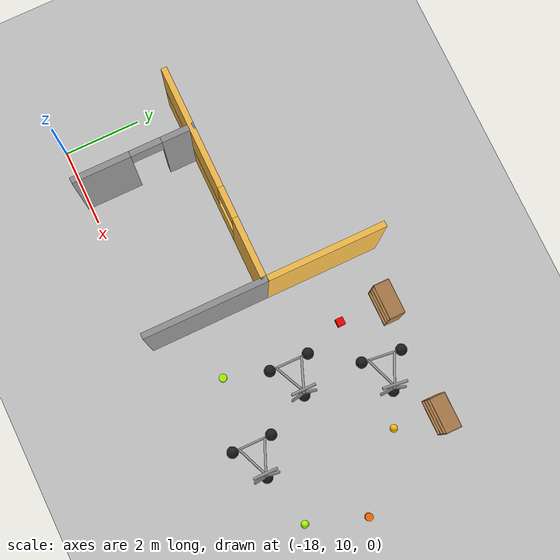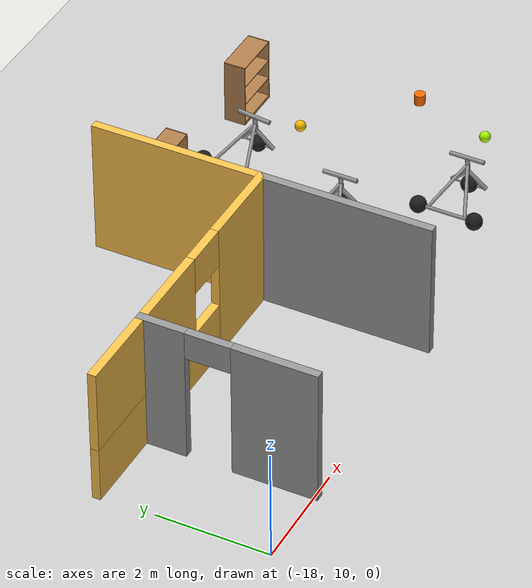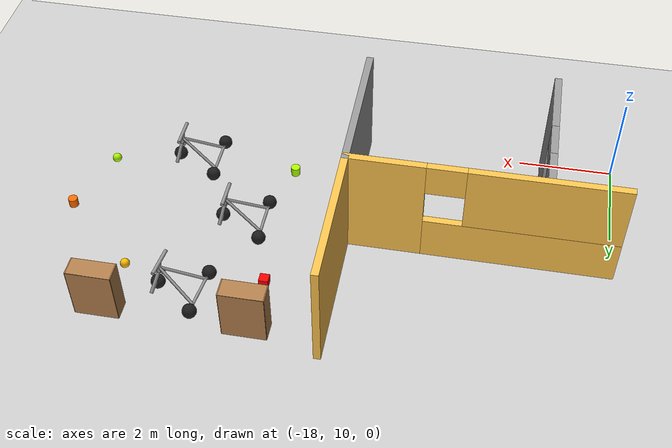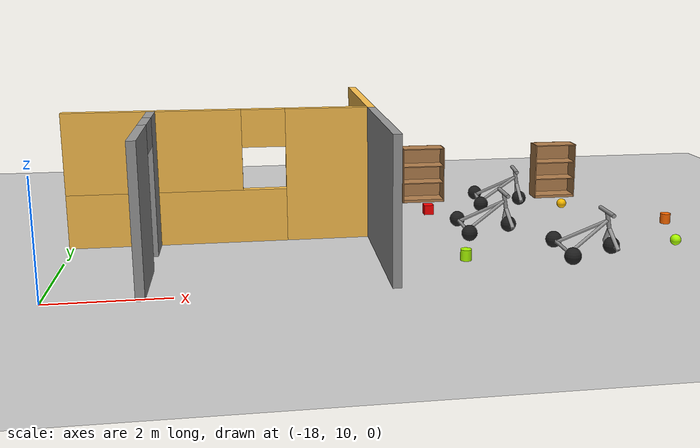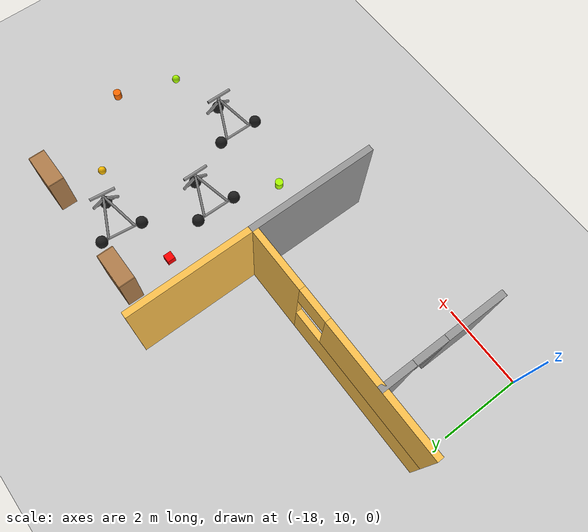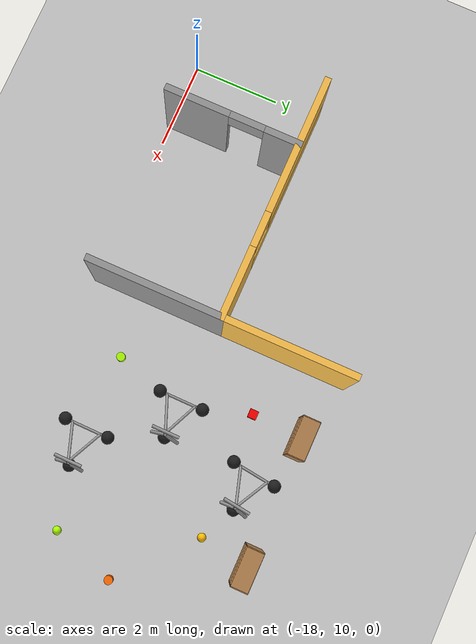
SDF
<sdf version="1.6">
 <world name="default">
  <model name="ground_plane">
   <static>1</static>
   <link name="link">
    <collision name="collision">
     <geometry><plane><normal>0 0 1</normal><size>100 100</size></plane></geometry>
     <surface><friction><ode><mu>100</mu><mu2>50</mu2></ode></friction></surface>
    </collision>
    <visual name="visual">
     <cast_shadows>0</cast_shadows>
     <geometry><plane><normal>0 0 1</normal><size>100 100</size></plane></geometry>
     <material>
      <script><uri>file://media/materials/scripts/gazebo.material</uri><name>Gazebo/Grey</name></script>
     </material>
    </visual>
   </link>
  </model>
  <model name="myWorld">
   <pose>-1.5 0 0 0 -0 0</pose>
   <link name="Wall_12">
    <pose>-15 11.5 0 0 0 -1.5708</pose>
    <visual name="Wall_12_Visual_0">
     <pose>-1.1475 0 1.25 0 -0 0</pose>
     <geometry><box><size>0.855 0.15 2.5</size></box></geometry>
     <material>
      <script><uri>file://media/materials/scripts/gazebo.material</uri><name>Gazebo/Grey</name></script>
      <ambient>1 1 1 1</ambient>
     </material>
     <meta><layer>0</layer></meta>
    </visual>
    <collision name="Wall_12_Collision_0">
     <geometry><box><size>0.855 0.15 2.5</size></box></geometry>
     <pose>-1.1475 0 1.25 0 -0 0</pose>
    </collision>
    <visual name="Wall_12_Visual_1">
     <pose>0.8275 0 1.25 0 -0 0</pose>
     <geometry><box><size>1.495 0.15 2.5</size></box></geometry>
     <material>
      <script><uri>file://media/materials/scripts/gazebo.material</uri><name>Gazebo/Grey</name></script>
      <ambient>1 1 1 1</ambient>
     </material>
     <meta><layer>0</layer></meta>
    </visual>
    <collision name="Wall_12_Collision_1">
     <geometry><box><size>1.495 0.15 2.5</size></box></geometry>
     <pose>0.8275 0 1.25 0 -0 0</pose>
    </collision>
    <visual name="Wall_12_Visual_2">
     <pose>-0.32 0 2.25 0 -0 0</pose>
     <geometry><box><size>0.8 0.15 0.5</size></box></geometry>
     <material>
      <script><uri>file://media/materials/scripts/gazebo.material</uri><name>Gazebo/Grey</name></script>
      <ambient>1 1 1 1</ambient>
     </material>
     <meta><layer>0</layer></meta>
    </visual>
    <collision name="Wall_12_Collision_2">
     <geometry><box><size>0.8 0.15 0.5</size></box></geometry>
     <pose>-0.32 0 2.25 0 -0 0</pose>
    </collision>
   </link>
   <link name="Wall_20">
    <collision name="Wall_20_Collision">
     <geometry><box><size>3.15 0.15 2.5</size></box></geometry>
     <pose>0 0 1.25 0 -0 0</pose>
    </collision>
    <visual name="Wall_20_Visual">
     <pose>0 0 1.25 0 -0 0</pose>
     <geometry><box><size>3.15 0.15 2.5</size></box></geometry>
     <material>
      <script><uri>file://media/materials/scripts/gazebo.material</uri><name>Gazebo/Grey</name></script>
      <ambient>1 1 1 1</ambient>
     </material>
     <meta><layer>0</layer></meta>
    </visual>
    <pose>-11 11.5 0 0 0 -1.5708</pose>
   </link>
   <link name="Wall_6">
    <collision name="Wall_6_Collision">
     <geometry><box><size>3.15 0.15 2.5</size></box></geometry>
     <pose>0 0 1.25 0 -0 0</pose>
    </collision>
    <visual name="Wall_6_Visual">
     <pose>0 0 1.25 0 -0 0</pose>
     <geometry><box><size>3.15 0.15 2.5</size></box></geometry>
     <material>
      <script><uri>file://media/materials/scripts/gazebo.material</uri><name>Gazebo/Grey</name></script>
      <ambient>1 0.764706 0.305882 1</ambient>
     </material>
     <meta><layer>0</layer></meta>
    </visual>
    <pose>-11 14.5 0 0 0 -1.5708</pose>
   </link>
   <link name="Wall_8">
    <pose>-13.75 13 0 0 -0 3.14159</pose>
    <visual name="Wall_8_Visual_0">
     <pose>-1.9875 0 1.25 0 -0 0</pose>
     <geometry><box><size>1.675 0.15 2.5</size></box></geometry>
     <material>
      <script><uri>file://media/materials/scripts/gazebo.material</uri><name>Gazebo/Grey</name></script>
      <ambient>1 0.764706 0.305882 1</ambient>
     </material>
     <meta><layer>0</layer></meta>
    </visual>
    <collision name="Wall_8_Collision_0">
     <geometry><box><size>1.675 0.15 2.5</size></box></geometry>
     <pose>-1.9875 0 1.25 0 -0 0</pose>
    </collision>
    <visual name="Wall_8_Visual_1">
     <pose>0.8375 0 0.5 0 -0 0</pose>
     <geometry><box><size>3.975 0.15 1</size></box></geometry>
     <material>
      <script><uri>file://media/materials/scripts/gazebo.material</uri><name>Gazebo/Grey</name></script>
      <ambient>1 0.764706 0.305882 1</ambient>
     </material>
     <meta><layer>0</layer></meta>
    </visual>
    <collision name="Wall_8_Collision_1">
     <geometry><box><size>3.975 0.15 1</size></box></geometry>
     <pose>0.8375 0 0.5 0 -0 0</pose>
    </collision>
    <visual name="Wall_8_Visual_2">
     <pose>1.2375 0 1.75 0 -0 0</pose>
     <geometry><box><size>3.175 0.15 1.5</size></box></geometry>
     <material>
      <script><uri>file://media/materials/scripts/gazebo.material</uri><name>Gazebo/Grey</name></script>
      <ambient>1 0.764706 0.305882 1</ambient>
     </material>
     <meta><layer>0</layer></meta>
    </visual>
    <collision name="Wall_8_Collision_2">
     <geometry><box><size>3.175 0.15 1.5</size></box></geometry>
     <pose>1.2375 0 1.75 0 -0 0</pose>
    </collision>
    <visual name="Wall_8_Visual_3">
     <pose>-0.75 0 2.15 0 -0 0</pose>
     <geometry><box><size>0.8 0.15 0.7</size></box></geometry>
     <material>
      <script><uri>file://media/materials/scripts/gazebo.material</uri><name>Gazebo/Grey</name></script>
      <ambient>1 0.764706 0.305882 1</ambient>
     </material>
     <meta><layer>0</layer></meta>
    </visual>
    <collision name="Wall_8_Collision_3">
     <geometry><box><size>0.8 0.15 0.7</size></box></geometry>
     <pose>-0.75 0 2.15 0 -0 0</pose>
    </collision>
   </link>
   <static>1</static>
  </model>
  <model name="sphere_yo">
   <link name="link_1">
    <pose>0 0 0.1 0 -0 0</pose>
    <inertial>
     <mass>1</mass>
     <inertia><ixx>0.1</ixx><ixy>0</ixy><ixz>0</ixz><iyy>0.1</iyy><iyz>0</iyz><izz>0.1</izz></inertia>
    </inertial>
    <visual name="visual">
     <geometry><sphere><radius>0.1</radius></sphere></geometry>
     <material>
      <lighting>1</lighting>
      <script><uri>file://media/materials/scripts/gazebo.material</uri><name>Gazebo/Grey</name></script>
      <ambient>1 0.749 0 1</ambient>
      <diffuse>1 0.749 0 1</diffuse>
      <specular>0 0 0 1</specular>
      <emissive>0 0 0 1</emissive>
      <shader type="vertex"><normal_map>__default__</normal_map></shader>
     </material>
    </visual>
    <collision name="collision">
     <geometry><sphere><radius>0.1</radius></sphere></geometry>
     <surface>
      <friction>
       <ode><mu>1</mu><mu2>1</mu2><fdir1>0 0 0</fdir1><slip1>0</slip1><slip2>0</slip2></ode>
       <torsional>
        <coefficient>1</coefficient>
        <patch_radius>0</patch_radius>
        <surface_radius>0</surface_radius>
        <use_patch_radius>1</use_patch_radius>
        <ode><slip>0</slip></ode>
       </torsional>
      </friction>
      <bounce><restitution_coefficient>0</restitution_coefficient><threshold>1e+06</threshold></bounce>
      <contact>
       <collide_without_contact>0</collide_without_contact>
       <collide_without_contact_bitmask>1</collide_without_contact_bitmask>
       <collide_bitmask>1</collide_bitmask>
       <ode>
        <soft_cfm>0</soft_cfm>
        <soft_erp>0.2</soft_erp>
        <kp>1e+13</kp>
        <kd>1</kd>
        <max_vel>0.01</max_vel>
        <min_depth>0</min_depth>
       </ode>
       <bullet>
        <split_impulse>1</split_impulse>
        <split_impulse_penetration_threshold>-0.01</split_impulse_penetration_threshold>
        <soft_cfm>0</soft_cfm>
        <soft_erp>0.2</soft_erp>
        <kp>1e+13</kp>
        <kd>1</kd>
       </bullet>
      </contact>
     </surface>
    </collision>
   </link>
   <static>1</static>
   <pose>-8.15794 14.4905 0 0 -0 0</pose>
  </model>
  <model name="trisphere_cycle">
   <link name="frame">
    <pose>-0.408559 0 0.385023 0 -0.522021 0</pose>
    <inertial>
     <mass>10</mass>
     <inertia><ixx>0.228</ixx><iyy>0.743521</iyy><izz>0.965521</izz><ixy>0</ixy><ixz>0</ixz><iyz>0</iyz></inertia>
    </inertial>
    <collision name="axle_collision">
     <pose>-0.471335 0 0 1.5708 -0 0</pose>
     <geometry><cylinder><length>1.03923</length><radius>0.03</radius></cylinder></geometry>
    </collision>
    <visual name="axle_visual">
     <pose>-0.471335 0 0 1.5708 -0 0</pose>
     <geometry><cylinder><length>1.03923</length><radius>0.03</radius></cylinder></geometry>
     <material>
      <script><uri>file://media/materials/scripts/gazebo.material</uri><name>Gazebo/Grey</name></script>
     </material>
    </visual>
    <collision name="frame_left_collision">
     <pose>0 0.171552 0 -2.79253 1.57079 3.14159</pose>
     <geometry><cylinder><length>1.00317</length><radius>0.03</radius></cylinder></geometry>
    </collision>
    <visual name="frame_left_visual">
     <pose>0 0.171552 0 -2.79253 1.57079 3.14159</pose>
     <geometry><cylinder><length>1.00317</length><radius>0.03</radius></cylinder></geometry>
     <material>
      <script><uri>file://media/materials/scripts/gazebo.material</uri><name>Gazebo/Grey</name></script>
     </material>
    </visual>
    <collision name="frame_right_collision">
     <pose>0 -0.171552 0 2.79253 1.57079 -3.14159</pose>
     <geometry><cylinder><length>1.00317</length><radius>0.03</radius></cylinder></geometry>
    </collision>
    <visual name="frame_right_visual">
     <pose>0 -0.171552 0 2.79253 1.57079 -3.14159</pose>
     <geometry><cylinder><length>1.00317</length><radius>0.03</radius></cylinder></geometry>
     <material>
      <script><uri>file://media/materials/scripts/gazebo.material</uri><name>Gazebo/Grey</name></script>
     </material>
    </visual>
   </link>
   <link name="fork">
    <pose>0.041441 0 0.385023 0 -0.174533 0</pose>
    <inertial>
     <mass>3</mass>
     <inertia>
      <ixx>0.158203</ixx>
      <iyy>0.0583594</iyy>
      <izz>0.102656</izz>
      <ixy>0</ixy>
      <ixz>0</ixz>
      <iyz>0</iyz>
     </inertia>
    </inertial>
    <collision name="handlebars_collision">
     <pose>0 0 0.397748 1.5708 -0 0</pose>
     <geometry><cylinder><length>0.636396</length><radius>0.0375</radius></cylinder></geometry>
    </collision>
    <visual name="handlebars_visual">
     <pose>0 0 0.397748 1.5708 -0 0</pose>
     <geometry><cylinder><length>0.636396</length><radius>0.0375</radius></cylinder></geometry>
     <material>
      <script><uri>file://media/materials/scripts/gazebo.material</uri><name>Gazebo/Grey</name></script>
     </material>
    </visual>
    <collision name="headtube_collision">
     <pose>0 0 0.238649 0 -0 0</pose>
     <geometry><cylinder><length>0.318198</length><radius>0.0375</radius></cylinder></geometry>
    </collision>
    <visual name="headtube_visual">
     <pose>0 0 0.238649 0 -0 0</pose>
     <geometry><cylinder><length>0.318198</length><radius>0.0375</radius></cylinder></geometry>
     <material>
      <script><uri>file://media/materials/scripts/gazebo.material</uri><name>Gazebo/Grey</name></script>
     </material>
    </visual>
    <collision name="spindle_collision">
     <pose>0 0 -0.238649 1.5708 -0 0</pose>
     <geometry><cylinder><length>0.636396</length><radius>0.015</radius></cylinder></geometry>
    </collision>
    <visual name="spindle_visual">
     <pose>0 0 -0.238649 1.5708 -0 0</pose>
     <geometry><cylinder><length>0.636396</length><radius>0.015</radius></cylinder></geometry>
     <material>
      <script><uri>file://media/materials/scripts/gazebo.material</uri><name>Gazebo/Grey</name></script>
     </material>
    </visual>
    <collision name="fork_left_collision">
     <pose>0 0.159099 -0.07955 0.785398 -0 0</pose>
     <geometry><cylinder><length>0.45</length><radius>0.0375</radius></cylinder></geometry>
    </collision>
    <visual name="fork_left_visual">
     <pose>0 0.159099 -0.07955 0.785398 -0 0</pose>
     <geometry><cylinder><length>0.45</length><radius>0.0375</radius></cylinder></geometry>
     <material>
      <script><uri>file://media/materials/scripts/gazebo.material</uri><name>Gazebo/Grey</name></script>
     </material>
    </visual>
    <collision name="fork_right_collision">
     <pose>0 -0.159099 -0.07955 -0.785398 0 0</pose>
     <geometry><cylinder><length>0.45</length><radius>0.0375</radius></cylinder></geometry>
    </collision>
    <visual name="fork_right_visual">
     <pose>0 -0.159099 -0.07955 -0.785398 0 0</pose>
     <geometry><cylinder><length>0.45</length><radius>0.0375</radius></cylinder></geometry>
     <material>
      <script><uri>file://media/materials/scripts/gazebo.material</uri><name>Gazebo/Grey</name></script>
     </material>
    </visual>
   </link>
   <link name="wheel_front">
    <pose>0.082882 0 0.15 0 -0 0</pose>
    <inertial>
     <mass>0.5</mass>
     <inertia><ixx>0.0045</ixx><iyy>0.0045</iyy><izz>0.0045</izz><ixy>0</ixy><ixz>0</ixz><iyz>0</iyz></inertia>
    </inertial>
    <collision name="collision">
     <geometry><sphere><radius>0.15</radius></sphere></geometry>
     <surface><contact><ode><kp>1e+08</kp><kd>1</kd><min_depth>0.0005</min_depth></ode></contact></surface>
    </collision>
    <visual name="visual">
     <geometry><sphere><radius>0.15</radius></sphere></geometry>
     <material>
      <script><uri>file://media/materials/scripts/gazebo.material</uri><name>Gazebo/Black</name></script>
     </material>
    </visual>
   </link>
   <joint name="wheel_front_steer" type="revolute">
    <parent>frame</parent>
    <child>fork</child>
    <axis>
     <xyz>0 0 1</xyz>
     <limit><lower>-0.959931</lower><upper>0.959931</upper></limit>
     <use_parent_model_frame>0</use_parent_model_frame>
     <dynamics><spring_reference>0</spring_reference><spring_stiffness>0</spring_stiffness></dynamics>
    </axis>
   </joint>
   <joint name="wheel_front_spin" type="revolute">
    <parent>fork</parent>
    <child>wheel_front</child>
    <axis>
     <xyz>0 1 0</xyz>
     <use_parent_model_frame>0</use_parent_model_frame>
     <limit><lower>-1e+16</lower><upper>1e+16</upper></limit>
     <dynamics><spring_reference>0</spring_reference><spring_stiffness>0</spring_stiffness></dynamics>
    </axis>
   </joint>
   <link name="wheel_rear_left">
    <pose>-0.817118 0.519615 0.15 0 -0 0</pose>
    <inertial>
     <mass>0.5</mass>
     <inertia><ixx>0.0045</ixx><iyy>0.0045</iyy><izz>0.0045</izz><ixy>0</ixy><ixz>0</ixz><iyz>0</iyz></inertia>
    </inertial>
    <collision name="collision">
     <geometry><sphere><radius>0.15</radius></sphere></geometry>
     <surface><contact><ode><kp>1e+08</kp><kd>1</kd><min_depth>0.0005</min_depth></ode></contact></surface>
    </collision>
    <visual name="visual">
     <geometry><sphere><radius>0.15</radius></sphere></geometry>
     <material>
      <script><uri>file://media/materials/scripts/gazebo.material</uri><name>Gazebo/Black</name></script>
     </material>
    </visual>
   </link>
   <joint name="wheel_rear_left_spin" type="revolute">
    <parent>frame</parent>
    <child>wheel_rear_left</child>
    <axis>
     <xyz>0 1 0</xyz>
     <use_parent_model_frame>0</use_parent_model_frame>
     <limit><lower>-1e+16</lower><upper>1e+16</upper></limit>
     <dynamics><spring_reference>0</spring_reference><spring_stiffness>0</spring_stiffness></dynamics>
    </axis>
   </joint>
   <link name="wheel_rear_right">
    <pose>-0.817118 -0.519615 0.15 0 -0 0</pose>
    <inertial>
     <mass>0.5</mass>
     <inertia><ixx>0.0045</ixx><iyy>0.0045</iyy><izz>0.0045</izz><ixy>0</ixy><ixz>0</ixz><iyz>0</iyz></inertia>
    </inertial>
    <collision name="collision">
     <geometry><sphere><radius>0.15</radius></sphere></geometry>
     <surface><contact><ode><kp>1e+08</kp><kd>1</kd><min_depth>0.0005</min_depth></ode></contact></surface>
    </collision>
    <visual name="visual">
     <geometry><sphere><radius>0.15</radius></sphere></geometry>
     <material>
      <script><uri>file://media/materials/scripts/gazebo.material</uri><name>Gazebo/Black</name></script>
     </material>
    </visual>
   </link>
   <joint name="wheel_rear_right_spin" type="revolute">
    <parent>frame</parent>
    <child>wheel_rear_right</child>
    <axis>
     <xyz>0 1 0</xyz>
     <use_parent_model_frame>0</use_parent_model_frame>
     <limit><lower>-1e+16</lower><upper>1e+16</upper></limit>
     <dynamics><spring_reference>0</spring_reference><spring_stiffness>0</spring_stiffness></dynamics>
    </axis>
   </joint>
   <pose>-9.9042 12.8437 0.009989 -2e-06 5e-06 -0.005517</pose>
  </model>
  <model name="cylinder_gy">
   <link name="link_0">
    <pose>0 0 0.1 0 -0 0</pose>
    <inertial>
     <mass>1</mass>
     <inertia><ixx>0.145833</ixx><ixy>0</ixy><ixz>0</ixz><iyy>0.145833</iyy><iyz>0</iyz><izz>0.125</izz></inertia>
    </inertial>
    <visual name="visual">
     <geometry><cylinder><radius>0.1</radius><length>0.2</length></cylinder></geometry>
     <material>
      <lighting>1</lighting>
      <script><uri>file://media/materials/scripts/gazebo.material</uri><name>Gazebo/Grey</name></script>
      <ambient>0.675 1 0 1</ambient>
      <diffuse>0.675 1 0 1</diffuse>
      <specular>0 0 0 1</specular>
      <emissive>0 0 0 1</emissive>
      <shader type="vertex"><normal_map>__default__</normal_map></shader>
     </material>
    </visual>
    <collision name="collision">
     <geometry><cylinder><radius>0.1</radius><length>0.2</length></cylinder></geometry>
     <surface>
      <friction>
       <ode><mu>1</mu><mu2>1</mu2><fdir1>0 0 0</fdir1><slip1>0</slip1><slip2>0</slip2></ode>
       <torsional>
        <coefficient>1</coefficient>
        <patch_radius>0</patch_radius>
        <surface_radius>0</surface_radius>
        <use_patch_radius>1</use_patch_radius>
        <ode><slip>0</slip></ode>
       </torsional>
      </friction>
      <bounce><restitution_coefficient>0</restitution_coefficient><threshold>1e+06</threshold></bounce>
      <contact>
       <collide_without_contact>0</collide_without_contact>
       <collide_without_contact_bitmask>1</collide_without_contact_bitmask>
       <collide_bitmask>1</collide_bitmask>
       <ode>
        <soft_cfm>0</soft_cfm>
        <soft_erp>0.2</soft_erp>
        <kp>1e+13</kp>
        <kd>1</kd>
        <max_vel>0.01</max_vel>
        <min_depth>0</min_depth>
       </ode>
       <bullet>
        <split_impulse>1</split_impulse>
        <split_impulse_penetration_threshold>-0.01</split_impulse_penetration_threshold>
        <soft_cfm>0</soft_cfm>
        <soft_erp>0.2</soft_erp>
        <kp>1e+13</kp>
        <kd>1</kd>
       </bullet>
      </contact>
     </surface>
    </collision>
   </link>
   <static>1</static>
   <pose>-11.0625 11.2076 0 0 -0 0</pose>
  </model>
  <model name="cylinder_or">
   <link name="link_0">
    <pose>0 0 0.1 0 -0 0</pose>
    <inertial>
     <mass>1</mass>
     <inertia><ixx>0.145833</ixx><ixy>0</ixy><ixz>0</ixz><iyy>0.145833</iyy><iyz>0</iyz><izz>0.125</izz></inertia>
    </inertial>
    <visual name="visual">
     <geometry><cylinder><radius>0.1</radius><length>0.2</length></cylinder></geometry>
     <material>
      <lighting>1</lighting>
      <script><uri>file://media/materials/scripts/gazebo.material</uri><name>Gazebo/Grey</name></script>
      <ambient>1 0.416 0 1</ambient>
      <diffuse>1 0.416 0 1</diffuse>
      <specular>0 0 0 1</specular>
      <emissive>0 0 0 1</emissive>
      <shader type="vertex"><normal_map>__default__</normal_map></shader>
     </material>
    </visual>
    <collision name="collision">
     <geometry><cylinder><radius>0.1</radius><length>0.2</length></cylinder></geometry>
     <surface>
      <friction>
       <ode><mu>1</mu><mu2>1</mu2><fdir1>0 0 0</fdir1><slip1>0</slip1><slip2>0</slip2></ode>
       <torsional>
        <coefficient>1</coefficient>
        <patch_radius>0</patch_radius>
        <surface_radius>0</surface_radius>
        <use_patch_radius>1</use_patch_radius>
        <ode><slip>0</slip></ode>
       </torsional>
      </friction>
      <bounce><restitution_coefficient>0</restitution_coefficient><threshold>1e+06</threshold></bounce>
      <contact>
       <collide_without_contact>0</collide_without_contact>
       <collide_without_contact_bitmask>1</collide_without_contact_bitmask>
       <collide_bitmask>1</collide_bitmask>
       <ode>
        <soft_cfm>0</soft_cfm>
        <soft_erp>0.2</soft_erp>
        <kp>1e+13</kp>
        <kd>1</kd>
        <max_vel>0.01</max_vel>
        <min_depth>0</min_depth>
       </ode>
       <bullet>
        <split_impulse>1</split_impulse>
        <split_impulse_penetration_threshold>-0.01</split_impulse_penetration_threshold>
        <soft_cfm>0</soft_cfm>
        <soft_erp>0.2</soft_erp>
        <kp>1e+13</kp>
        <kd>1</kd>
       </bullet>
      </contact>
     </surface>
    </collision>
   </link>
   <static>1</static>
   <pose>-6.5 13 0 0 -0 0</pose>
  </model>
  <model name="sphere_gy">
   <link name="link_1">
    <pose>0 0 0.1 0 -0 0</pose>
    <inertial>
     <mass>1</mass>
     <inertia><ixx>0.1</ixx><ixy>0</ixy><ixz>0</ixz><iyy>0.1</iyy><iyz>0</iyz><izz>0.1</izz></inertia>
    </inertial>
    <visual name="visual">
     <geometry><sphere><radius>0.1</radius></sphere></geometry>
     <material>
      <lighting>1</lighting>
      <script><uri>file://media/materials/scripts/gazebo.material</uri><name>Gazebo/Grey</name></script>
      <ambient>0.675 1 0 1</ambient>
      <diffuse>0.675 1 0 1</diffuse>
      <specular>0 0 0 1</specular>
      <emissive>0 0 0 1</emissive>
      <shader type="vertex"><normal_map>__default__</normal_map></shader>
     </material>
    </visual>
    <collision name="collision">
     <geometry><sphere><radius>0.1</radius></sphere></geometry>
     <surface>
      <friction>
       <ode><mu>1</mu><mu2>1</mu2><fdir1>0 0 0</fdir1><slip1>0</slip1><slip2>0</slip2></ode>
       <torsional>
        <coefficient>1</coefficient>
        <patch_radius>0</patch_radius>
        <surface_radius>0</surface_radius>
        <use_patch_radius>1</use_patch_radius>
        <ode><slip>0</slip></ode>
       </torsional>
      </friction>
      <bounce><restitution_coefficient>0</restitution_coefficient><threshold>1e+06</threshold></bounce>
      <contact>
       <collide_without_contact>0</collide_without_contact>
       <collide_without_contact_bitmask>1</collide_without_contact_bitmask>
       <collide_bitmask>1</collide_bitmask>
       <ode>
        <soft_cfm>0</soft_cfm>
        <soft_erp>0.2</soft_erp>
        <kp>1e+13</kp>
        <kd>1</kd>
        <max_vel>0.01</max_vel>
        <min_depth>0</min_depth>
       </ode>
       <bullet>
        <split_impulse>1</split_impulse>
        <split_impulse_penetration_threshold>-0.01</split_impulse_penetration_threshold>
        <soft_cfm>0</soft_cfm>
        <soft_erp>0.2</soft_erp>
        <kp>1e+13</kp>
        <kd>1</kd>
       </bullet>
      </contact>
     </surface>
    </collision>
   </link>
   <static>1</static>
   <pose>-7 11.5155 0 0 -0 0</pose>
  </model>
  <model name="trisphere_cycle_1">
   <link name="frame">
    <pose>-0.408559 0 0.385023 0 -0.522021 0</pose>
    <inertial>
     <mass>10</mass>
     <inertia><ixx>0.228</ixx><iyy>0.743521</iyy><izz>0.965521</izz><ixy>0</ixy><ixz>0</ixz><iyz>0</iyz></inertia>
    </inertial>
    <collision name="axle_collision">
     <pose>-0.471335 0 0 1.5708 -0 0</pose>
     <geometry><cylinder><length>1.03923</length><radius>0.03</radius></cylinder></geometry>
    </collision>
    <visual name="axle_visual">
     <pose>-0.471335 0 0 1.5708 -0 0</pose>
     <geometry><cylinder><length>1.03923</length><radius>0.03</radius></cylinder></geometry>
     <material>
      <script><uri>file://media/materials/scripts/gazebo.material</uri><name>Gazebo/Grey</name></script>
     </material>
    </visual>
    <collision name="frame_left_collision">
     <pose>0 0.171552 0 -2.79253 1.57079 3.14159</pose>
     <geometry><cylinder><length>1.00317</length><radius>0.03</radius></cylinder></geometry>
    </collision>
    <visual name="frame_left_visual">
     <pose>0 0.171552 0 -2.79253 1.57079 3.14159</pose>
     <geometry><cylinder><length>1.00317</length><radius>0.03</radius></cylinder></geometry>
     <material>
      <script><uri>file://media/materials/scripts/gazebo.material</uri><name>Gazebo/Grey</name></script>
     </material>
    </visual>
    <collision name="frame_right_collision">
     <pose>0 -0.171552 0 2.79253 1.57079 -3.14159</pose>
     <geometry><cylinder><length>1.00317</length><radius>0.03</radius></cylinder></geometry>
    </collision>
    <visual name="frame_right_visual">
     <pose>0 -0.171552 0 2.79253 1.57079 -3.14159</pose>
     <geometry><cylinder><length>1.00317</length><radius>0.03</radius></cylinder></geometry>
     <material>
      <script><uri>file://media/materials/scripts/gazebo.material</uri><name>Gazebo/Grey</name></script>
     </material>
    </visual>
   </link>
   <link name="fork">
    <pose>0.041441 0 0.385023 0 -0.174533 0</pose>
    <inertial>
     <mass>3</mass>
     <inertia>
      <ixx>0.158203</ixx>
      <iyy>0.0583594</iyy>
      <izz>0.102656</izz>
      <ixy>0</ixy>
      <ixz>0</ixz>
      <iyz>0</iyz>
     </inertia>
    </inertial>
    <collision name="handlebars_collision">
     <pose>0 0 0.397748 1.5708 -0 0</pose>
     <geometry><cylinder><length>0.636396</length><radius>0.0375</radius></cylinder></geometry>
    </collision>
    <visual name="handlebars_visual">
     <pose>0 0 0.397748 1.5708 -0 0</pose>
     <geometry><cylinder><length>0.636396</length><radius>0.0375</radius></cylinder></geometry>
     <material>
      <script><uri>file://media/materials/scripts/gazebo.material</uri><name>Gazebo/Grey</name></script>
     </material>
    </visual>
    <collision name="headtube_collision">
     <pose>0 0 0.238649 0 -0 0</pose>
     <geometry><cylinder><length>0.318198</length><radius>0.0375</radius></cylinder></geometry>
    </collision>
    <visual name="headtube_visual">
     <pose>0 0 0.238649 0 -0 0</pose>
     <geometry><cylinder><length>0.318198</length><radius>0.0375</radius></cylinder></geometry>
     <material>
      <script><uri>file://media/materials/scripts/gazebo.material</uri><name>Gazebo/Grey</name></script>
     </material>
    </visual>
    <collision name="spindle_collision">
     <pose>0 0 -0.238649 1.5708 -0 0</pose>
     <geometry><cylinder><length>0.636396</length><radius>0.015</radius></cylinder></geometry>
    </collision>
    <visual name="spindle_visual">
     <pose>0 0 -0.238649 1.5708 -0 0</pose>
     <geometry><cylinder><length>0.636396</length><radius>0.015</radius></cylinder></geometry>
     <material>
      <script><uri>file://media/materials/scripts/gazebo.material</uri><name>Gazebo/Grey</name></script>
     </material>
    </visual>
    <collision name="fork_left_collision">
     <pose>0 0.159099 -0.07955 0.785398 -0 0</pose>
     <geometry><cylinder><length>0.45</length><radius>0.0375</radius></cylinder></geometry>
    </collision>
    <visual name="fork_left_visual">
     <pose>0 0.159099 -0.07955 0.785398 -0 0</pose>
     <geometry><cylinder><length>0.45</length><radius>0.0375</radius></cylinder></geometry>
     <material>
      <script><uri>file://media/materials/scripts/gazebo.material</uri><name>Gazebo/Grey</name></script>
     </material>
    </visual>
    <collision name="fork_right_collision">
     <pose>0 -0.159099 -0.07955 -0.785398 0 0</pose>
     <geometry><cylinder><length>0.45</length><radius>0.0375</radius></cylinder></geometry>
    </collision>
    <visual name="fork_right_visual">
     <pose>0 -0.159099 -0.07955 -0.785398 0 0</pose>
     <geometry><cylinder><length>0.45</length><radius>0.0375</radius></cylinder></geometry>
     <material>
      <script><uri>file://media/materials/scripts/gazebo.material</uri><name>Gazebo/Grey</name></script>
     </material>
    </visual>
   </link>
   <link name="wheel_front">
    <pose>0.082882 0 0.15 0 -0 0</pose>
    <inertial>
     <mass>0.5</mass>
     <inertia><ixx>0.0045</ixx><iyy>0.0045</iyy><izz>0.0045</izz><ixy>0</ixy><ixz>0</ixz><iyz>0</iyz></inertia>
    </inertial>
    <collision name="collision">
     <geometry><sphere><radius>0.15</radius></sphere></geometry>
     <surface><contact><ode><kp>1e+08</kp><kd>1</kd><min_depth>0.0005</min_depth></ode></contact></surface>
    </collision>
    <visual name="visual">
     <geometry><sphere><radius>0.15</radius></sphere></geometry>
     <material>
      <script><uri>file://media/materials/scripts/gazebo.material</uri><name>Gazebo/Black</name></script>
     </material>
    </visual>
   </link>
   <joint name="wheel_front_steer" type="revolute">
    <parent>frame</parent>
    <child>fork</child>
    <axis>
     <xyz>0 0 1</xyz>
     <limit><lower>-0.959931</lower><upper>0.959931</upper></limit>
     <use_parent_model_frame>0</use_parent_model_frame>
     <dynamics><spring_reference>0</spring_reference><spring_stiffness>0</spring_stiffness></dynamics>
    </axis>
   </joint>
   <joint name="wheel_front_spin" type="revolute">
    <parent>fork</parent>
    <child>wheel_front</child>
    <axis>
     <xyz>0 1 0</xyz>
     <use_parent_model_frame>0</use_parent_model_frame>
     <limit><lower>-1e+16</lower><upper>1e+16</upper></limit>
     <dynamics><spring_reference>0</spring_reference><spring_stiffness>0</spring_stiffness></dynamics>
    </axis>
   </joint>
   <link name="wheel_rear_left">
    <pose>-0.817118 0.519615 0.15 0 -0 0</pose>
    <inertial>
     <mass>0.5</mass>
     <inertia><ixx>0.0045</ixx><iyy>0.0045</iyy><izz>0.0045</izz><ixy>0</ixy><ixz>0</ixz><iyz>0</iyz></inertia>
    </inertial>
    <collision name="collision">
     <geometry><sphere><radius>0.15</radius></sphere></geometry>
     <surface><contact><ode><kp>1e+08</kp><kd>1</kd><min_depth>0.0005</min_depth></ode></contact></surface>
    </collision>
    <visual name="visual">
     <geometry><sphere><radius>0.15</radius></sphere></geometry>
     <material>
      <script><uri>file://media/materials/scripts/gazebo.material</uri><name>Gazebo/Black</name></script>
     </material>
    </visual>
   </link>
   <joint name="wheel_rear_left_spin" type="revolute">
    <parent>frame</parent>
    <child>wheel_rear_left</child>
    <axis>
     <xyz>0 1 0</xyz>
     <use_parent_model_frame>0</use_parent_model_frame>
     <limit><lower>-1e+16</lower><upper>1e+16</upper></limit>
     <dynamics><spring_reference>0</spring_reference><spring_stiffness>0</spring_stiffness></dynamics>
    </axis>
   </joint>
   <link name="wheel_rear_right">
    <pose>-0.817118 -0.519615 0.15 0 -0 0</pose>
    <inertial>
     <mass>0.5</mass>
     <inertia><ixx>0.0045</ixx><iyy>0.0045</iyy><izz>0.0045</izz><ixy>0</ixy><ixz>0</ixz><iyz>0</iyz></inertia>
    </inertial>
    <collision name="collision">
     <geometry><sphere><radius>0.15</radius></sphere></geometry>
     <surface><contact><ode><kp>1e+08</kp><kd>1</kd><min_depth>0.0005</min_depth></ode></contact></surface>
    </collision>
    <visual name="visual">
     <geometry><sphere><radius>0.15</radius></sphere></geometry>
     <material>
      <script><uri>file://media/materials/scripts/gazebo.material</uri><name>Gazebo/Black</name></script>
     </material>
    </visual>
   </link>
   <joint name="wheel_rear_right_spin" type="revolute">
    <parent>frame</parent>
    <child>wheel_rear_right</child>
    <axis>
     <xyz>0 1 0</xyz>
     <use_parent_model_frame>0</use_parent_model_frame>
     <limit><lower>-1e+16</lower><upper>1e+16</upper></limit>
     <dynamics><spring_reference>0</spring_reference><spring_stiffness>0</spring_stiffness></dynamics>
    </axis>
   </joint>
   <pose>-8.4858 11.1644 0.009996 -1e-06 -3e-06 -0.008748</pose>
  </model>
  <model name="trisphere_cycle_3">
   <link name="frame">
    <pose>-0.408559 0 0.385023 0 -0.522021 0</pose>
    <inertial>
     <mass>10</mass>
     <inertia><ixx>0.228</ixx><iyy>0.743521</iyy><izz>0.965521</izz><ixy>0</ixy><ixz>0</ixz><iyz>0</iyz></inertia>
    </inertial>
    <collision name="axle_collision">
     <pose>-0.471335 0 0 1.5708 -0 0</pose>
     <geometry><cylinder><length>1.03923</length><radius>0.03</radius></cylinder></geometry>
    </collision>
    <visual name="axle_visual">
     <pose>-0.471335 0 0 1.5708 -0 0</pose>
     <geometry><cylinder><length>1.03923</length><radius>0.03</radius></cylinder></geometry>
     <material>
      <script><uri>file://media/materials/scripts/gazebo.material</uri><name>Gazebo/Grey</name></script>
     </material>
    </visual>
    <collision name="frame_left_collision">
     <pose>0 0.171552 0 -2.79253 1.57079 3.14159</pose>
     <geometry><cylinder><length>1.00317</length><radius>0.03</radius></cylinder></geometry>
    </collision>
    <visual name="frame_left_visual">
     <pose>0 0.171552 0 -2.79253 1.57079 3.14159</pose>
     <geometry><cylinder><length>1.00317</length><radius>0.03</radius></cylinder></geometry>
     <material>
      <script><uri>file://media/materials/scripts/gazebo.material</uri><name>Gazebo/Grey</name></script>
     </material>
    </visual>
    <collision name="frame_right_collision">
     <pose>0 -0.171552 0 2.79253 1.57079 -3.14159</pose>
     <geometry><cylinder><length>1.00317</length><radius>0.03</radius></cylinder></geometry>
    </collision>
    <visual name="frame_right_visual">
     <pose>0 -0.171552 0 2.79253 1.57079 -3.14159</pose>
     <geometry><cylinder><length>1.00317</length><radius>0.03</radius></cylinder></geometry>
     <material>
      <script><uri>file://media/materials/scripts/gazebo.material</uri><name>Gazebo/Grey</name></script>
     </material>
    </visual>
   </link>
   <link name="fork">
    <pose>0.041441 0 0.385023 0 -0.174533 0</pose>
    <inertial>
     <mass>3</mass>
     <inertia>
      <ixx>0.158203</ixx>
      <iyy>0.0583594</iyy>
      <izz>0.102656</izz>
      <ixy>0</ixy>
      <ixz>0</ixz>
      <iyz>0</iyz>
     </inertia>
    </inertial>
    <collision name="handlebars_collision">
     <pose>0 0 0.397748 1.5708 -0 0</pose>
     <geometry><cylinder><length>0.636396</length><radius>0.0375</radius></cylinder></geometry>
    </collision>
    <visual name="handlebars_visual">
     <pose>0 0 0.397748 1.5708 -0 0</pose>
     <geometry><cylinder><length>0.636396</length><radius>0.0375</radius></cylinder></geometry>
     <material>
      <script><uri>file://media/materials/scripts/gazebo.material</uri><name>Gazebo/Grey</name></script>
     </material>
    </visual>
    <collision name="headtube_collision">
     <pose>0 0 0.238649 0 -0 0</pose>
     <geometry><cylinder><length>0.318198</length><radius>0.0375</radius></cylinder></geometry>
    </collision>
    <visual name="headtube_visual">
     <pose>0 0 0.238649 0 -0 0</pose>
     <geometry><cylinder><length>0.318198</length><radius>0.0375</radius></cylinder></geometry>
     <material>
      <script><uri>file://media/materials/scripts/gazebo.material</uri><name>Gazebo/Grey</name></script>
     </material>
    </visual>
    <collision name="spindle_collision">
     <pose>0 0 -0.238649 1.5708 -0 0</pose>
     <geometry><cylinder><length>0.636396</length><radius>0.015</radius></cylinder></geometry>
    </collision>
    <visual name="spindle_visual">
     <pose>0 0 -0.238649 1.5708 -0 0</pose>
     <geometry><cylinder><length>0.636396</length><radius>0.015</radius></cylinder></geometry>
     <material>
      <script><uri>file://media/materials/scripts/gazebo.material</uri><name>Gazebo/Grey</name></script>
     </material>
    </visual>
    <collision name="fork_left_collision">
     <pose>0 0.159099 -0.07955 0.785398 -0 0</pose>
     <geometry><cylinder><length>0.45</length><radius>0.0375</radius></cylinder></geometry>
    </collision>
    <visual name="fork_left_visual">
     <pose>0 0.159099 -0.07955 0.785398 -0 0</pose>
     <geometry><cylinder><length>0.45</length><radius>0.0375</radius></cylinder></geometry>
     <material>
      <script><uri>file://media/materials/scripts/gazebo.material</uri><name>Gazebo/Grey</name></script>
     </material>
    </visual>
    <collision name="fork_right_collision">
     <pose>0 -0.159099 -0.07955 -0.785398 0 0</pose>
     <geometry><cylinder><length>0.45</length><radius>0.0375</radius></cylinder></geometry>
    </collision>
    <visual name="fork_right_visual">
     <pose>0 -0.159099 -0.07955 -0.785398 0 0</pose>
     <geometry><cylinder><length>0.45</length><radius>0.0375</radius></cylinder></geometry>
     <material>
      <script><uri>file://media/materials/scripts/gazebo.material</uri><name>Gazebo/Grey</name></script>
     </material>
    </visual>
   </link>
   <link name="wheel_front">
    <pose>0.082882 0 0.15 0 -0 0</pose>
    <inertial>
     <mass>0.5</mass>
     <inertia><ixx>0.0045</ixx><iyy>0.0045</iyy><izz>0.0045</izz><ixy>0</ixy><ixz>0</ixz><iyz>0</iyz></inertia>
    </inertial>
    <collision name="collision">
     <geometry><sphere><radius>0.15</radius></sphere></geometry>
     <surface><contact><ode><kp>1e+08</kp><kd>1</kd><min_depth>0.0005</min_depth></ode></contact></surface>
    </collision>
    <visual name="visual">
     <geometry><sphere><radius>0.15</radius></sphere></geometry>
     <material>
      <script><uri>file://media/materials/scripts/gazebo.material</uri><name>Gazebo/Black</name></script>
     </material>
    </visual>
   </link>
   <joint name="wheel_front_steer" type="revolute">
    <parent>frame</parent>
    <child>fork</child>
    <axis>
     <xyz>0 0 1</xyz>
     <limit><lower>-0.959931</lower><upper>0.959931</upper></limit>
     <use_parent_model_frame>0</use_parent_model_frame>
     <dynamics><spring_reference>0</spring_reference><spring_stiffness>0</spring_stiffness></dynamics>
    </axis>
   </joint>
   <joint name="wheel_front_spin" type="revolute">
    <parent>fork</parent>
    <child>wheel_front</child>
    <axis>
     <xyz>0 1 0</xyz>
     <use_parent_model_frame>0</use_parent_model_frame>
     <limit><lower>-1e+16</lower><upper>1e+16</upper></limit>
     <dynamics><spring_reference>0</spring_reference><spring_stiffness>0</spring_stiffness></dynamics>
    </axis>
   </joint>
   <link name="wheel_rear_left">
    <pose>-0.817118 0.519615 0.15 0 -0 0</pose>
    <inertial>
     <mass>0.5</mass>
     <inertia><ixx>0.0045</ixx><iyy>0.0045</iyy><izz>0.0045</izz><ixy>0</ixy><ixz>0</ixz><iyz>0</iyz></inertia>
    </inertial>
    <collision name="collision">
     <geometry><sphere><radius>0.15</radius></sphere></geometry>
     <surface><contact><ode><kp>1e+08</kp><kd>1</kd><min_depth>0.0005</min_depth></ode></contact></surface>
    </collision>
    <visual name="visual">
     <geometry><sphere><radius>0.15</radius></sphere></geometry>
     <material>
      <script><uri>file://media/materials/scripts/gazebo.material</uri><name>Gazebo/Black</name></script>
     </material>
    </visual>
   </link>
   <joint name="wheel_rear_left_spin" type="revolute">
    <parent>frame</parent>
    <child>wheel_rear_left</child>
    <axis>
     <xyz>0 1 0</xyz>
     <use_parent_model_frame>0</use_parent_model_frame>
     <limit><lower>-1e+16</lower><upper>1e+16</upper></limit>
     <dynamics><spring_reference>0</spring_reference><spring_stiffness>0</spring_stiffness></dynamics>
    </axis>
   </joint>
   <link name="wheel_rear_right">
    <pose>-0.817118 -0.519615 0.15 0 -0 0</pose>
    <inertial>
     <mass>0.5</mass>
     <inertia><ixx>0.0045</ixx><iyy>0.0045</iyy><izz>0.0045</izz><ixy>0</ixy><ixz>0</ixz><iyz>0</iyz></inertia>
    </inertial>
    <collision name="collision">
     <geometry><sphere><radius>0.15</radius></sphere></geometry>
     <surface><contact><ode><kp>1e+08</kp><kd>1</kd><min_depth>0.0005</min_depth></ode></contact></surface>
    </collision>
    <visual name="visual">
     <geometry><sphere><radius>0.15</radius></sphere></geometry>
     <material>
      <script><uri>file://media/materials/scripts/gazebo.material</uri><name>Gazebo/Black</name></script>
     </material>
    </visual>
   </link>
   <joint name="wheel_rear_right_spin" type="revolute">
    <parent>frame</parent>
    <child>wheel_rear_right</child>
    <axis>
     <xyz>0 1 0</xyz>
     <use_parent_model_frame>0</use_parent_model_frame>
     <limit><lower>-1e+16</lower><upper>1e+16</upper></limit>
     <dynamics><spring_reference>0</spring_reference><spring_stiffness>0</spring_stiffness></dynamics>
    </axis>
   </joint>
   <pose>-9.07639 14.8893 0.009998 4e-06 -1e-05 -0.12385</pose>
  </model>
  <model name="bookshelf_0">
   <static>1</static>
   <link name="link">
    <inertial><mass>1</mass></inertial>
    <collision name="back">
     <pose>0 0.005 0.6 0 -0 0</pose>
     <geometry><box><size>0.9 0.01 1.2</size></box></geometry>
    </collision>
    <visual name="visual1">
     <pose>0 0.005 0.6 0 -0 0</pose>
     <geometry><box><size>0.9 0.01 1.2</size></box></geometry>
     <material>
      <script><uri>file://media/materials/scripts/gazebo.material</uri><name>Gazebo/Wood</name></script>
     </material>
    </visual>
    <collision name="left_side">
     <pose>0.45 -0.195 0.6 0 -0 0</pose>
     <geometry><box><size>0.02 0.4 1.2</size></box></geometry>
    </collision>
    <visual name="visual2">
     <pose>0.45 -0.195 0.6 0 -0 0</pose>
     <geometry><box><size>0.02 0.4 1.2</size></box></geometry>
     <material>
      <script><uri>file://media/materials/scripts/gazebo.material</uri><name>Gazebo/Wood</name></script>
     </material>
    </visual>
    <collision name="right_side">
     <pose>-0.45 -0.195 0.6 0 -0 0</pose>
     <geometry><box><size>0.02 0.4 1.2</size></box></geometry>
    </collision>
    <visual name="visual3">
     <pose>-0.45 -0.195 0.6 0 -0 0</pose>
     <geometry><box><size>0.02 0.4 1.2</size></box></geometry>
     <material>
      <script><uri>file://media/materials/scripts/gazebo.material</uri><name>Gazebo/Wood</name></script>
     </material>
    </visual>
    <collision name="bottom">
     <pose>0 -0.195 0.03 0 -0 0</pose>
     <geometry><box><size>0.88 0.4 0.06</size></box></geometry>
    </collision>
    <visual name="visual4">
     <pose>0 -0.195 0.03 0 -0 0</pose>
     <geometry><box><size>0.88 0.4 0.06</size></box></geometry>
     <material>
      <script><uri>file://media/materials/scripts/gazebo.material</uri><name>Gazebo/Wood</name></script>
     </material>
    </visual>
    <collision name="top">
     <pose>0 -0.195 1.19 0 -0 0</pose>
     <geometry><box><size>0.88 0.4 0.02</size></box></geometry>
    </collision>
    <visual name="visual5">
     <pose>0 -0.195 1.19 0 -0 0</pose>
     <geometry><box><size>0.88 0.4 0.02</size></box></geometry>
     <material>
      <script><uri>file://media/materials/scripts/gazebo.material</uri><name>Gazebo/Wood</name></script>
     </material>
    </visual>
    <collision name="low_shelf">
     <pose>0 -0.195 0.43 0 -0 0</pose>
     <geometry><box><size>0.88 0.4 0.02</size></box></geometry>
    </collision>
    <visual name="visual6">
     <pose>0 -0.195 0.43 0 -0 0</pose>
     <geometry><box><size>0.88 0.4 0.02</size></box></geometry>
     <material>
      <script><uri>file://media/materials/scripts/gazebo.material</uri><name>Gazebo/Wood</name></script>
     </material>
    </visual>
    <collision name="high_shelf">
     <pose>0 -0.195 0.8 0 -0 0</pose>
     <geometry><box><size>0.88 0.4 0.02</size></box></geometry>
    </collision>
    <visual name="visual7">
     <pose>0 -0.195 0.8 0 -0 0</pose>
     <geometry><box><size>0.88 0.4 0.02</size></box></geometry>
     <material>
      <script><uri>file://media/materials/scripts/gazebo.material</uri><name>Gazebo/Wood</name></script>
     </material>
    </visual>
   </link>
   <pose>-11 15.8062 0 0 -0 0</pose>
  </model>
  <model name="cube_r">
   <link name="link_2">
    <pose>0 0 0.1 0 -0 0</pose>
    <inertial>
     <mass>1</mass>
     <inertia>
      <ixx>0.166667</ixx>
      <ixy>0</ixy>
      <ixz>0</ixz>
      <iyy>0.166667</iyy>
      <iyz>0</iyz>
      <izz>0.166667</izz>
     </inertia>
    </inertial>
    <visual name="visual">
     <geometry><box><size>0.2 0.2 0.2</size></box></geometry>
     <material>
      <lighting>1</lighting>
      <script><uri>file://media/materials/scripts/gazebo.material</uri><name>Gazebo/Grey</name></script>
      <ambient>1 0 0 1</ambient>
      <diffuse>1 0 0 1</diffuse>
      <specular>0 0 0 1</specular>
      <emissive>0 0 0 1</emissive>
      <shader type="vertex"><normal_map>__default__</normal_map></shader>
     </material>
    </visual>
    <collision name="collision">
     <geometry><box><size>0.2 0.2 0.2</size></box></geometry>
     <surface>
      <friction>
       <ode><mu>1</mu><mu2>1</mu2><fdir1>0 0 0</fdir1><slip1>0</slip1><slip2>0</slip2></ode>
       <torsional>
        <coefficient>1</coefficient>
        <patch_radius>0</patch_radius>
        <surface_radius>0</surface_radius>
        <use_patch_radius>1</use_patch_radius>
        <ode><slip>0</slip></ode>
       </torsional>
      </friction>
      <bounce><restitution_coefficient>0</restitution_coefficient><threshold>1e+06</threshold></bounce>
      <contact>
       <collide_without_contact>0</collide_without_contact>
       <collide_without_contact_bitmask>1</collide_without_contact_bitmask>
       <collide_bitmask>1</collide_bitmask>
       <ode>
        <soft_cfm>0</soft_cfm>
        <soft_erp>0.2</soft_erp>
        <kp>1e+13</kp>
        <kd>1</kd>
        <max_vel>0.01</max_vel>
        <min_depth>0</min_depth>
       </ode>
       <bullet>
        <split_impulse>1</split_impulse>
        <split_impulse_penetration_threshold>-0.01</split_impulse_penetration_threshold>
        <soft_cfm>0</soft_cfm>
        <soft_erp>0.2</soft_erp>
        <kp>1e+13</kp>
        <kd>1</kd>
       </bullet>
      </contact>
     </surface>
    </collision>
   </link>
   <static>1</static>
   <pose>-11.091 14.4426 0 0 -0 0</pose>
  </model>
  <model name="bookshelf_1">
   <static>1</static>
   <link name="link">
    <inertial><mass>1</mass></inertial>
    <collision name="back">
     <pose>0 0.005 0.6 0 -0 0</pose>
     <geometry><box><size>0.9 0.01 1.2</size></box></geometry>
    </collision>
    <visual name="visual1">
     <pose>0 0.005 0.6 0 -0 0</pose>
     <geometry><box><size>0.9 0.01 1.2</size></box></geometry>
     <material>
      <script><uri>file://media/materials/scripts/gazebo.material</uri><name>Gazebo/Wood</name></script>
     </material>
    </visual>
    <collision name="left_side">
     <pose>0.45 -0.195 0.6 0 -0 0</pose>
     <geometry><box><size>0.02 0.4 1.2</size></box></geometry>
    </collision>
    <visual name="visual2">
     <pose>0.45 -0.195 0.6 0 -0 0</pose>
     <geometry><box><size>0.02 0.4 1.2</size></box></geometry>
     <material>
      <script><uri>file://media/materials/scripts/gazebo.material</uri><name>Gazebo/Wood</name></script>
     </material>
    </visual>
    <collision name="right_side">
     <pose>-0.45 -0.195 0.6 0 -0 0</pose>
     <geometry><box><size>0.02 0.4 1.2</size></box></geometry>
    </collision>
    <visual name="visual3">
     <pose>-0.45 -0.195 0.6 0 -0 0</pose>
     <geometry><box><size>0.02 0.4 1.2</size></box></geometry>
     <material>
      <script><uri>file://media/materials/scripts/gazebo.material</uri><name>Gazebo/Wood</name></script>
     </material>
    </visual>
    <collision name="bottom">
     <pose>0 -0.195 0.03 0 -0 0</pose>
     <geometry><box><size>0.88 0.4 0.06</size></box></geometry>
    </collision>
    <visual name="visual4">
     <pose>0 -0.195 0.03 0 -0 0</pose>
     <geometry><box><size>0.88 0.4 0.06</size></box></geometry>
     <material>
      <script><uri>file://media/materials/scripts/gazebo.material</uri><name>Gazebo/Wood</name></script>
     </material>
    </visual>
    <collision name="top">
     <pose>0 -0.195 1.19 0 -0 0</pose>
     <geometry><box><size>0.88 0.4 0.02</size></box></geometry>
    </collision>
    <visual name="visual5">
     <pose>0 -0.195 1.19 0 -0 0</pose>
     <geometry><box><size>0.88 0.4 0.02</size></box></geometry>
     <material>
      <script><uri>file://media/materials/scripts/gazebo.material</uri><name>Gazebo/Wood</name></script>
     </material>
    </visual>
    <collision name="low_shelf">
     <pose>0 -0.195 0.43 0 -0 0</pose>
     <geometry><box><size>0.88 0.4 0.02</size></box></geometry>
    </collision>
    <visual name="visual6">
     <pose>0 -0.195 0.43 0 -0 0</pose>
     <geometry><box><size>0.88 0.4 0.02</size></box></geometry>
     <material>
      <script><uri>file://media/materials/scripts/gazebo.material</uri><name>Gazebo/Wood</name></script>
     </material>
    </visual>
    <collision name="high_shelf">
     <pose>0 -0.195 0.8 0 -0 0</pose>
     <geometry><box><size>0.88 0.4 0.02</size></box></geometry>
    </collision>
    <visual name="visual7">
     <pose>0 -0.195 0.8 0 -0 0</pose>
     <geometry><box><size>0.88 0.4 0.02</size></box></geometry>
     <material>
      <script><uri>file://media/materials/scripts/gazebo.material</uri><name>Gazebo/Wood</name></script>
     </material>
    </visual>
   </link>
   <pose>-8 15.8062 0 0 -0 0</pose>
  </model>
 </world>
</sdf>
